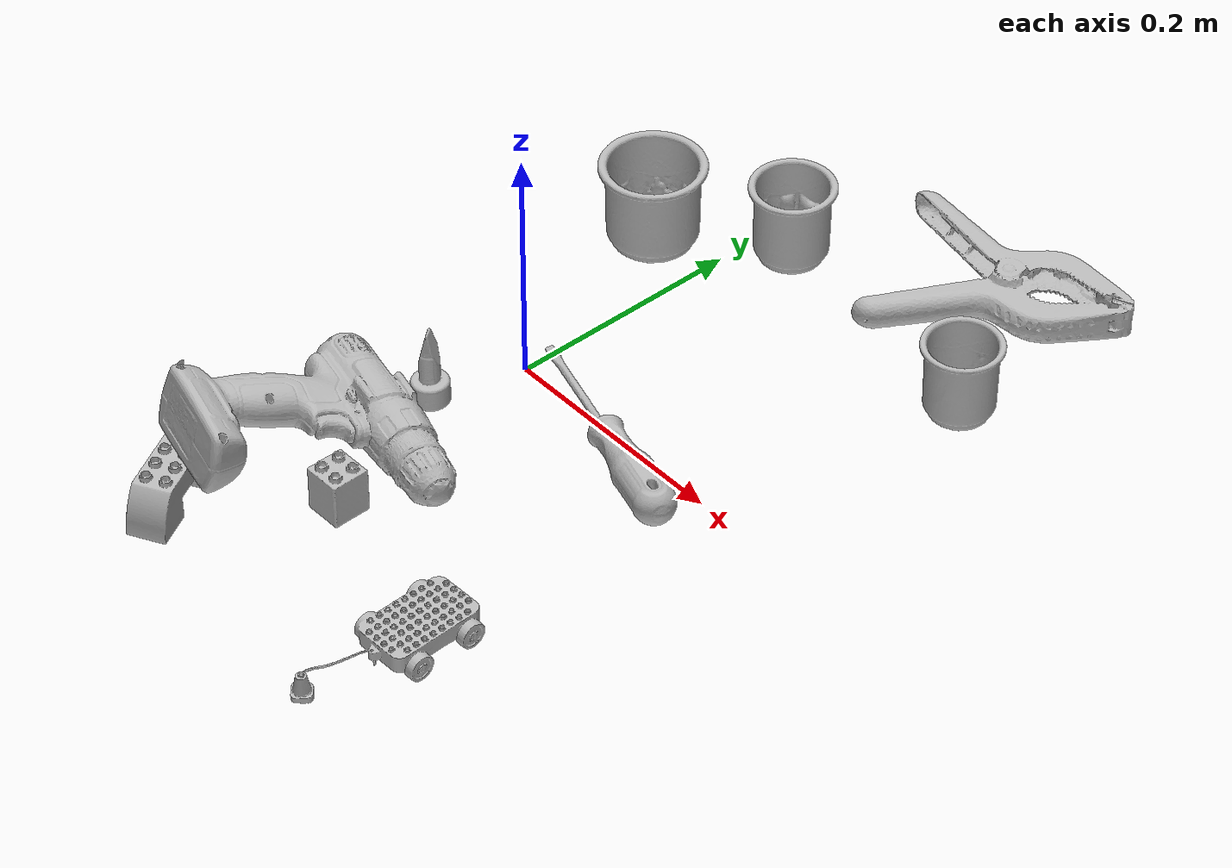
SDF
<sdf version="1.4">
  <world name="default">
    <light name="light1" type="point">
      <pose>0 0 1 0 0 0</pose>
      <diffuse>3 3 3 1</diffuse>
      <specular>3 3 3 1</specular>
    </light>
    <light name="light2" type="point">
      <pose>0 0.5 2 0 0 0</pose>
      <diffuse>1 1 1 1</diffuse>
      <specular>1 1 1 1</specular>
    </light>
    <light name="light3" type="point">
      <pose>0 0.5 2 0 0 0</pose>
      <diffuse>3 3 3 1</diffuse>
      <specular>3 3 3 1</specular>
    </light>
    <scene>
      <ambient>0.7 0.7 0.7</ambient>
    </scene>
    <model name="cup1">
      <link name="link_cup1">
        <collision name="default">
          <geometry>
            <mesh>
              <uri>model://d_cups/collision_meshes/collision.obj</uri>
              <scale>1.0 1.0 1.0</scale>
            </mesh>
          </geometry>
          <surface>
            <friction>
              <ode>
                <mu>0.5</mu>
                <mu2>0.5</mu2>
              </ode>
            </friction>
          <contact>
        <ode>
            <max_vel>0</max_vel>
            <min_depth>0.0001</min_depth>
            <kp>1e8</kp>
        </ode>
    </contact></surface>
        </collision>
        <visual name="default">
          <geometry>
            <mesh>
              <uri>model://d_cups/visual_meshes/visual.dae</uri>
              <scale>1.0 1.0 1.0</scale>
            </mesh>
          </geometry>
        </visual>
        <inertial>
          <mass>0.04943045228719711</mass>
          <pose>0.0008068052702583373 0.0019117395859211683 -0.0022666507866233587 0.2401104468273406 -0.24710716259907536 0.594298245500967</pose>
          <inertia>
            <ixx>4.1384912e-05</ixx>
            <iyy>4.1265153e-05</iyy>
            <izz>3.7460377e-05</izz>
            <ixy>0</ixy>
            <ixz>0</ixz>
            <iyz>0</iyz>
          </inertia>
        </inertial>
      </link>
      <pose>0.031472254544496536 0.24619638919830322 0.03465884178876877 -4.213142336905336e-05 -1.8425526200059424e-05 0.14311481830903214</pose>
    </model>
    <model name="cup2">
      <link name="link_cup2">
        <collision name="default">
          <geometry>
            <mesh>
              <uri>model://c_cups/collision_meshes/collision.obj</uri>
              <scale>1.0 1.0 1.0</scale>
            </mesh>
          </geometry>
          <surface>
            <friction>
              <ode>
                <mu>0.5</mu>
                <mu2>0.5</mu2>
              </ode>
            </friction>
          <contact>
        <ode>
            <max_vel>0</max_vel>
            <min_depth>0.0001</min_depth>
            <kp>1e8</kp>
        </ode>
    </contact></surface>
        </collision>
        <visual name="default">
          <geometry>
            <mesh>
              <uri>model://c_cups/visual_meshes/visual.dae</uri>
              <scale>1.0 1.0 1.0</scale>
            </mesh>
          </geometry>
        </visual>
        <inertial>
          <mass>0.02161477506160736</mass>
          <pose>0.0007237254758365452 0.002015391131862998 -0.0012750980677083135 0.3021577101392444 0.013461522825774588 -0.08771822086046323</pose>
          <inertia>
            <ixx>1.607462e-05</ixx>
            <iyy>1.5790554e-05</iyy>
            <izz>1.4215883e-05</izz>
            <ixy>0</ixy>
            <ixz>0</ixz>
            <iyz>0</iyz>
          </inertia>
        </inertial>
      </link>
      <pose>0.2501874268054962 0.21549029648303986 0.03345901146531105 1.6931427942075722e-06 3.919017845599114e-07 -1.408024601321959</pose>
    </model>
    <model name="cup3">
      <link name="link_cup3">
        <collision name="default">
          <geometry>
            <mesh>
              <uri>model://g_cups/collision_meshes/collision.obj</uri>
              <scale>1.0 1.0 1.0</scale>
            </mesh>
          </geometry>
          <surface>
            <friction>
              <ode>
                <mu>0.5</mu>
                <mu2>0.5</mu2>
              </ode>
            </friction>
          <contact>
        <ode>
            <max_vel>0</max_vel>
            <min_depth>0.0001</min_depth>
            <kp>1e8</kp>
        </ode>
    </contact></surface>
        </collision>
        <visual name="default">
          <geometry>
            <mesh>
              <uri>model://g_cups/visual_meshes/visual.dae</uri>
              <scale>1.0 1.0 1.0</scale>
            </mesh>
          </geometry>
        </visual>
        <inertial>
          <mass>0.04413851350545883</mass>
          <pose>-0.0007946275873109698 -4.206433004583232e-05 -0.002132937777787447 -0.2138199678327952 -0.31410615416341514 0.3111935262320568</pose>
          <inertia>
            <ixx>5.151955e-05</ixx>
            <iyy>5.1344283e-05</iyy>
            <izz>5.3365377e-05</izz>
            <ixy>0</ixy>
            <ixz>0</ixz>
            <iyz>0</iyz>
          </inertia>
        </inertial>
      </link>
      <pose>-0.055805377662181854 0.17807520925998688 0.03720301017165184 2.9281133136042377e-08 3.1504993246230806e-06 -1.5321423411204484</pose>
    </model>
    <model name="toy1">
      <link name="link_toy1">
        <collision name="default">
          <geometry>
            <mesh>
              <uri>model://e_lego_duplo/collision_meshes/collision.obj</uri>
              <scale>1.0 1.0 1.0</scale>
            </mesh>
          </geometry>
          <surface>
            <friction>
              <ode>
                <mu>0.5</mu>
                <mu2>0.5</mu2>
              </ode>
            </friction>
          <contact>
        <ode>
            <max_vel>0</max_vel>
            <min_depth>0.0001</min_depth>
            <kp>1e8</kp>
        </ode>
    </contact></surface>
        </collision>
        <visual name="default">
          <geometry>
            <mesh>
              <uri>model://e_lego_duplo/visual_meshes/visual.dae</uri>
              <scale>1.0 1.0 1.0</scale>
            </mesh>
          </geometry>
        </visual>
        <inertial>
          <mass>0.08806774020195007</mass>
          <pose>0.0003256051568314433 0.00023485405836254358 0.0019521453650668263 -0.02256777049150226 -6.824370740412915e-05 -0.00762515400873393</pose>
          <inertia>
            <ixx>1.8365032e-05</ixx>
            <iyy>7.537481e-05</iyy>
            <izz>7.3399904e-05</izz>
            <ixy>0</ixy>
            <ixz>0</ixz>
            <iyz>0</iyz>
          </inertia>
        </inertial>
      </link>
      <pose>-0.06031759828329086 -0.2878316640853882 0.021808961406350136 0.00012835421035190824 3.1335764582170455e-05 2.067873872479987</pose>
    </model>
    <model name="toy2">
      <link name="link_toy2">
        <collision name="default">
          <geometry>
            <mesh>
              <uri>model://b_lego_duplo/collision_meshes/collision.obj</uri>
              <scale>1.0 1.0 1.0</scale>
            </mesh>
          </geometry>
          <surface>
            <friction>
              <ode>
                <mu>0.5</mu>
                <mu2>0.5</mu2>
              </ode>
            </friction>
          <contact>
        <ode>
            <max_vel>0</max_vel>
            <min_depth>0.0001</min_depth>
            <kp>1e8</kp>
        </ode>
    </contact></surface>
        </collision>
        <visual name="default">
          <geometry>
            <mesh>
              <uri>model://b_lego_duplo/visual_meshes/visual.dae</uri>
              <scale>1.0 1.0 1.0</scale>
            </mesh>
          </geometry>
        </visual>
        <inertial>
          <mass>0.04734363779425621</mass>
          <pose>-0.00011053025809815153 -9.15254986466607e-06 0.0019294298253953457 -0.03749543151759021 -0.02635344242756168 0.4519151706388912</pose>
          <inertia>
            <ixx>9.689229e-06</ixx>
            <iyy>9.754364e-06</iyy>
            <izz>8.632791e-06</izz>
            <ixy>0</ixy>
            <ixz>0</ixz>
            <iyz>0</iyz>
          </inertia>
        </inertial>
      </link>
      <pose>0.028136901557445526 -0.20280830562114716 0.021815015003085136 5.333046424735017e-07 5.7757740972761e-08 -1.5527714247751798</pose>
    </model>
    <model name="toy3">
      <link name="link_toy3">
        <collision name="default">
          <geometry>
            <mesh>
              <uri>model://g_lego_duplo/collision_meshes/collision.obj</uri>
              <scale>0.5 0.5 0.5</scale>
            </mesh>
          </geometry>
          <surface>
            <friction>
              <ode>
                <mu>0.5</mu>
                <mu2>0.5</mu2>
              </ode>
            </friction>
          <contact>
        <ode>
            <max_vel>0</max_vel>
            <min_depth>0.0001</min_depth>
            <kp>1e8</kp>
        </ode>
    </contact></surface>
        </collision>
        <visual name="default">
          <geometry>
            <mesh>
              <uri>model://g_lego_duplo/visual_meshes/visual.dae</uri>
              <scale>0.5 0.5 0.5</scale>
            </mesh>
          </geometry>
        </visual>
        <inertial>
          <mass>0.0549229197204113</mass>
          <pose>-0.02502383477985859 0.0008777315961197019 0.0019403378246352077 0.010963030367844774 0.03810824354215502 -0.09653013034360637</pose>
          <inertia>
            <ixx>1.989599e-05</ixx>
            <iyy>6.0152015e-05</iyy>
            <izz>7.525238e-05</izz>
            <ixy>0</ixy>
            <ixz>0</ixz>
            <iyz>0</iyz>
          </inertia>
        </inertial>
      </link>
      <pose>0.1733359545469284 -0.27506497502326965 0.014996820129454136 -6.270541623988256e-05 -0.0036883409789120634 -1.5415786680333814</pose>
    </model>
    <model name="toy4">
      <link name="link_toy4">
        <collision name="default">
          <geometry>
            <mesh>
              <uri>model://e_toy_airplane/collision_meshes/collision.obj</uri>
              <scale>1.0 1.0 1.0</scale>
            </mesh>
          </geometry>
          <surface>
            <friction>
              <ode>
                <mu>0.5</mu>
                <mu2>0.5</mu2>
              </ode>
            </friction>
          <contact>
        <ode>
            <max_vel>0</max_vel>
            <min_depth>0.0001</min_depth>
            <kp>1e8</kp>
        </ode>
    </contact></surface>
        </collision>
        <visual name="default">
          <geometry>
            <mesh>
              <uri>model://e_toy_airplane/visual_meshes/visual.dae</uri>
              <scale>1.0 1.0 1.0</scale>
            </mesh>
          </geometry>
        </visual>
        <inertial>
          <mass>0.02949252724647522</mass>
          <pose>0.0001174047210952267 -2.248294731543865e-05 -0.011187205091118813 0.00551852159670192 0.009228270522190251 0.15041692690710914</pose>
          <inertia>
            <ixx>9.0014555e-06</ixx>
            <iyy>8.909378e-06</iyy>
            <izz>2.7052915e-06</izz>
            <ixy>0</ixy>
            <ixz>0</ixz>
            <iyz>0</iyz>
          </inertia>
        </inertial>
      </link>
      <pose>-0.021608883515000343 -0.07575277984142303 0.033212192356586456 3.566006643426699e-05 -0.00021392502631212233 -2.6073074393438334</pose>
    </model>
    <model name="hardware1">
      <link name="link_hardware1">
        <collision name="default">
          <geometry>
            <mesh>
              <uri>model://power_drill/collision_meshes/collision.obj</uri>
              <scale>1.0 1.0 1.0</scale>
            </mesh>
          </geometry>
          <surface>
            <friction>
              <ode>
                <mu>0.5</mu>
                <mu2>0.5</mu2>
              </ode>
            </friction>
          <contact>
        <ode>
            <max_vel>0</max_vel>
            <min_depth>0.0001</min_depth>
            <kp>1e8</kp>
        </ode>
    </contact></surface>
        </collision>
        <visual name="default">
          <geometry>
            <mesh>
              <uri>model://power_drill/visual_meshes/visual.dae</uri>
              <scale>1.0 1.0 1.0</scale>
            </mesh>
          </geometry>
        </visual>
        <inertial>
          <mass>0.4622694253921509</mass>
          <pose>-0.014780544675886631 0.014369423501193523 0.0012414170196279883 0.0046091653592492164 0.00407302392026691 -0.1836269379856391</pose>
          <inertia>
            <ixx>0.0018837696</ixx>
            <iyy>0.00074116525</iyy>
            <izz>0.0024878501</izz>
            <ixy>0</ixy>
            <ixz>0</ixz>
            <iyz>0</iyz>
          </inertia>
        </inertial>
      </link>
      <pose>-0.012228029780089855 -0.19905321300029755 0.04685473069548607 -0.28964628042941143 -0.00013084603633611882 -0.23553841897995856</pose>
    </model>
    <model name="hardware2">
      <link name="link_hardware2">
        <collision name="default">
          <geometry>
            <mesh>
              <uri>model://flat_screwdriver/collision_meshes/collision.obj</uri>
              <scale>1.0 1.0 1.0</scale>
            </mesh>
          </geometry>
          <surface>
            <friction>
              <ode>
                <mu>0.5</mu>
                <mu2>0.5</mu2>
              </ode>
            </friction>
          <contact>
        <ode>
            <max_vel>0</max_vel>
            <min_depth>0.0001</min_depth>
            <kp>1e8</kp>
        </ode>
    </contact></surface>
        </collision>
        <visual name="default">
          <geometry>
            <mesh>
              <uri>model://flat_screwdriver/visual_meshes/visual.dae</uri>
              <scale>1.0 1.0 1.0</scale>
            </mesh>
          </geometry>
        </visual>
        <inertial>
          <mass>0.07028686255216599</mass>
          <pose>-0.0489187091588974 -0.0006576801533810794 -0.0006140916375443339 -0.5613212056153659 -0.0032337294395619258 0.006982277044942129</pose>
          <inertia>
            <ixx>8.3043415e-06</ixx>
            <iyy>0.00010542549</iyy>
            <izz>0.00010537667</izz>
            <ixy>0</ixy>
            <ixz>0</ixz>
            <iyz>0</iyz>
          </inertia>
        </inertial>
      </link>
      <pose>0.10499714314937592 -0.011560648679733276 0.015338652767241001 -0.21441036515665063 0.04069451723049045 2.8276547395972087</pose>
    </model>
    <model name="hardware3">
      <link name="link_hardware3">
        <collision name="default">
          <geometry>
            <mesh>
              <uri>model://extra_large_clamp/collision_meshes/collision.obj</uri>
              <scale>1.0 1.0 1.0</scale>
            </mesh>
          </geometry>
          <surface>
            <friction>
              <ode>
                <mu>0.5</mu>
                <mu2>0.5</mu2>
              </ode>
            </friction>
          <contact>
        <ode>
            <max_vel>0</max_vel>
            <min_depth>0.0001</min_depth>
            <kp>1e8</kp>
        </ode>
    </contact></surface>
        </collision>
        <visual name="default">
          <geometry>
            <mesh>
              <uri>model://extra_large_clamp/visual_meshes/visual.dae</uri>
              <scale>1.0 1.0 1.0</scale>
            </mesh>
          </geometry>
        </visual>
        <inertial>
          <mass>0.19051048159599304</mass>
          <pose>0.0032320222817361355 -7.615413051098585e-05 0.0003172157157678157 0.013786989477745152 -0.0005066809054022428 -0.0008935736893705532</pose>
          <inertia>
            <ixx>0.00028954487</ixx>
            <iyy>0.0004985067</iyy>
            <izz>0.0007616155</izz>
            <ixy>0</ixy>
            <ixz>0</ixz>
            <iyz>0</iyz>
          </inertia>
        </inertial>
      </link>
      <pose>0.18660546839237213 0.330287903547287 0.01804804429411888 -0.029553916868651216 0.010112982904067922 0.4646350532915806</pose>
    </model>
  <physics type="ode">
      <max_contacts>50</max_contacts>
      <ode>
        <solver>
          <type>quick</type>
          <iters>75</iters>
        </solver>
        <constraints>
          <contact_max_correcting_vel>0</contact_max_correcting_vel>
          <contact_surface_layer>0</contact_surface_layer>
        </constraints>
      </ode>
    </physics></world>
</sdf>
